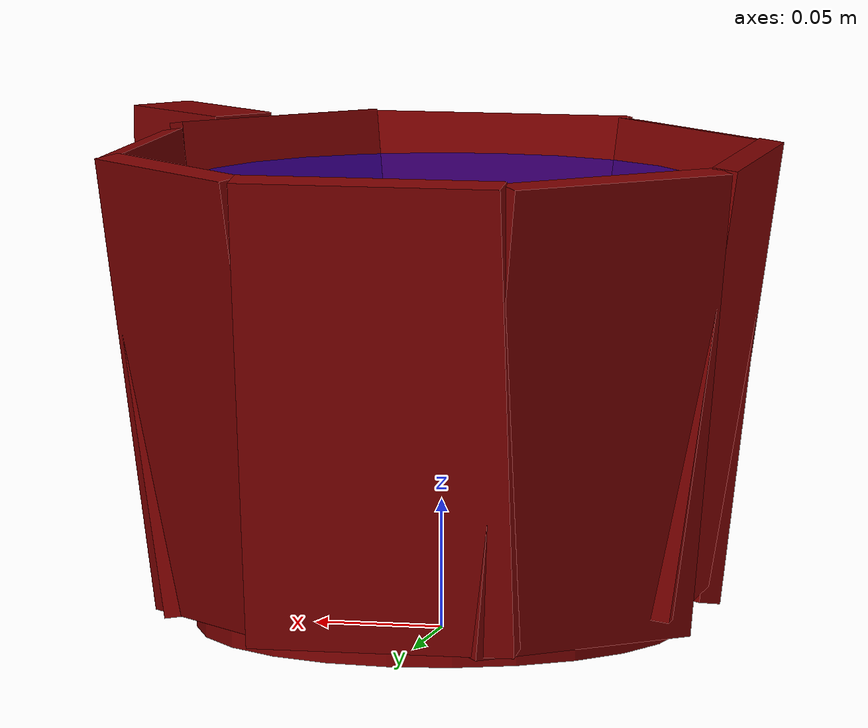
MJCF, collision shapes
<mujoco model="model">
  <option timestep="0.002" gravity="0.0 0.0 -9.81"/>
  <compiler angle="radian"/>
  <asset>
    <mesh file="visuals/blade.obj" name="blade_vis"/>
    <mesh file="visuals/pitcher.obj" name="pitcher_vis"/>
    <mesh file="visuals/pitcher_main.obj" name="pitcher_main_vis"/>
    <texture file="visuals/T_BC001.png" name="pitcher_material" type="2d"/>
    <material name="pitcher_material" rgba="1 1 1 1.0" texture="pitcher_material" shininess="0.4472135901451111" specular="2"/>
    <texture file="visuals/T_BC001.png" name="blade_material" type="2d"/>
    <material name="blade_material" rgba="1 1 1 1.0" texture="blade_material" shininess="0.4472135901451111" specular="4"/>
    <texture file="visuals/T_BC001.png" name="pitcher_main_material" type="2d"/>
    <material name="pitcher_main_material" rgba="1 1 1 0.800000011920929" texture="pitcher_main_material" shininess="0.6880392730236053" specular="0.33333333333333337"/>
  </asset>
  <default>
    <default class="visual">
      <geom conaffinity="0" contype="0" group="1" type="mesh"/>
    </default>
    <default class="collision">
      <geom group="0" rgba="0.5 0 0 0.5" density="1.0" solref="0.004 1" solimp="0.998 0.998 0.001"/>
    </default>
    <default class="spawn">
      <geom group="0" rgba="1 1 1 0.5" contype="0" conaffinity="0"/>
      <site group="0" rgba="1 1 1 0.5"/>
    </default>
    <default class="region">
      <geom group="1" conaffinity="0" contype="0" rgba="0 1 0 0" mass="0"/>
    </default>
  </default>
  <worldbody>
    <body>
      <body name="object">
        <body name="pitcher">
          <geom mesh="pitcher_vis" type="mesh" solimp="0.998 0.998 0.001" solref="0.001 1" friction="0.95 0.3 0.1" class="visual" material="pitcher_material"/>
          <geom type="cylinder" pos="-0.00007492 0.00280522 0.01773963" size="0.09389330446720123 0.016140157356858253" quat="1.0 0.0 0.0 0.0" class="collision"/>
          <geom class="collision" type="box" pos="0.11953454 -0.09948118 0.17314580" size="0.013613344170153141 0.02776089869439602 0.015190458856523037" quat="0.9058365821838379 0.0 0.0 0.4236273169517517" name="pitcher_handle_1"/>
          <geom class="collision" type="box" pos="0.13307938 -0.11145782 0.10917147" size="0.013502799905836582 0.009573325514793396 0.04846155270934105" quat="0.9058365821838379 0.0 0.0 0.4236273169517517" name="pitcher_handle_0"/>
          <geom type="cylinder" pos="-0.00102258 0.00505354 0.04985800" size="0.01608540304005146 0.015532627701759338" quat="1.0 0.0 0.0 0.0" class="collision"/>
          <body name="blade">
            <geom mesh="blade_vis" type="mesh" solimp="0.998 0.998 0.001" solref="0.001 1" friction="0.95 0.3 0.1" class="visual" material="blade_material"/>
            <geom type="box" pos="-0.00189308 0.00328441 0.07147215" size="0.015887247398495674 0.040357667952775955 0.0015504435868933797" quat="1.0 0.0 0.0 0.0" class="collision"/>
            <geom type="box" pos="-0.03375625 0.00516930 0.07147215" size="0.015887247398495674 0.014575560577213764 0.0015504435868933797" quat="1.0 0.0 0.0 0.0" class="collision"/>
            <geom type="box" pos="0.02996101 0.00516930 0.07147215" size="0.015887247398495674 0.014575560577213764 0.0015504435868933797" quat="1.0 0.0 0.0 0.0" class="collision"/>
            <geom type="box" pos="0.06445124 0.00516930 0.08742443" size="0.022117655724287033 0.014575560577213764 0.0015504439361393452" quat="0.9253676533699036 0.0 -0.37907081842422485 0.0" class="collision"/>
            <geom type="box" pos="-0.06792761 0.00516930 0.08742443" size="0.022117655724287033 0.014575560577213764 0.0015504439361393452" quat="4.008005873856746e-07 -0.9253676533699036 1.641853515366165e-07 0.37907081842422485" class="collision"/>
            <geom type="box" pos="-0.00173819 0.06714567 0.06342065" size="0.026381054893136024 0.014575560577213764 0.001550444052554667" quat="0.13120178878307343 0.6948279738426208 0.6948282718658447 -0.13120168447494507" class="collision"/>
            <geom type="box" pos="-0.00173819 -0.05776433 0.06351814" size="0.026113703846931458 0.014575560577213764 0.001550444052554667" quat="0.6948281526565552 0.13120175898075104 -0.13120178878307343 0.6948280930519104" class="collision"/>
          </body>
          <body name="pitcher_main">
            <geom class="region" type="cylinder" size="0.09999999403953552 0.0342894047498703" pos="-0.00166719 0.00557232 0.13953891" rgba="0 0 1 0.5" name="reg_int"/>
            <geom mesh="pitcher_main_vis" type="mesh" solimp="0.998 0.998 0.001" solref="0.001 1" friction="0.95 0.3 0.1" class="visual" material="pitcher_main_material"/>
            <geom type="box" pos="0.00082975 0.11225362 0.09796815" size="0.05125673860311508 0.006122444290667772 0.08999137580394745" quat="0.9973172545433044 -0.07320006936788559 0.0 0.0" class="collision"/>
            <geom type="box" pos="0.10576703 0.00173349 0.09742537" size="0.051528241485357285 0.0040107835084199905 0.08897125720977783" quat="0.7052098512649536 -0.0517602264881134 0.051760219037532806 -0.7052097916603088" class="collision"/>
            <geom type="box" pos="0.00082975 -0.10763947 0.09948440" size="0.05125673860311508 0.005388589575886726 0.08828059583902359" quat="7.52953610572149e-08 -5.526434421199156e-09 0.07320006936788559 -0.9973172545433044" class="collision"/>
            <geom type="box" pos="-0.10705413 0.00173347 0.10076386" size="0.051528241485357285 0.00485691474750638 0.08673109114170074" quat="0.7052098512649536 -0.0517602264881134 -0.0517602264881134 0.7052097916603088" class="collision"/>
            <geom type="box" pos="0.07684596 0.07774969 0.09845117" size="0.045730192214250565 0.005176766309887171 0.08872608095407486" quat="0.9214010238647461 -0.06762798875570297 0.028012456372380257 -0.38165685534477234" class="collision"/>
            <geom type="box" pos="-0.07620352 0.07876674 0.09698983" size="0.048428039997816086 0.005164290312677622 0.09014152735471725" quat="0.9214010238647461 -0.06762799620628357 -0.028012439608573914 0.38165685534477234" class="collision"/>
            <geom type="box" pos="-0.07507589 -0.07417214 0.09696825" size="0.04781375452876091 0.004935937002301216 0.09029550850391388" quat="0.38165679574012756 -0.028012432157993317 -0.06762800365686417 0.9214010238647461" class="collision"/>
            <geom type="box" pos="0.07701180 -0.07444855 0.10008390" size="0.04515534266829491 0.0049200886860489845 0.08869536966085434" quat="0.38165679574012756 -0.028012439608573914 0.06762800365686417 -0.9214010238647461" class="collision"/>
          </body>
        </body>
        <geom class="region" name="reg_bbox" density="0" type="box" pos="0.013135499999999994 -0.0003055000000000002 0.093697" size="0.1354695 0.126842 0.09457199999999999"/>
      </body>
      <site rgba="0 1 0 0" size="0.005" pos="0.01592821 -0.01083621 0.2017383" name="anchor_site"/>
    </body>
  </worldbody>
</mujoco>
